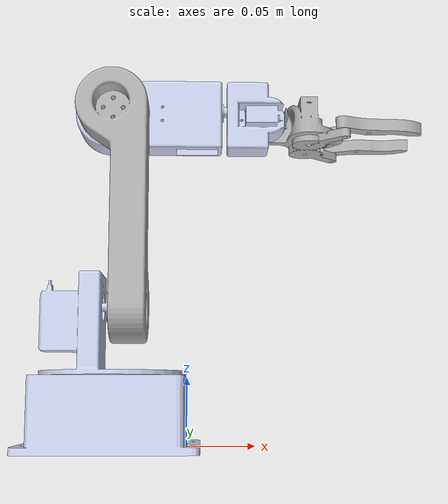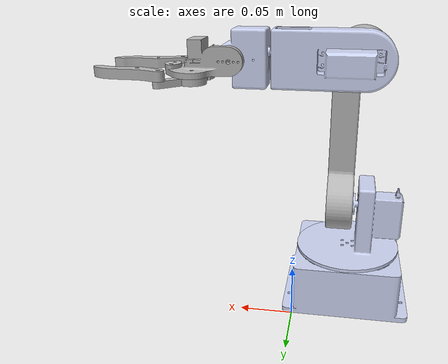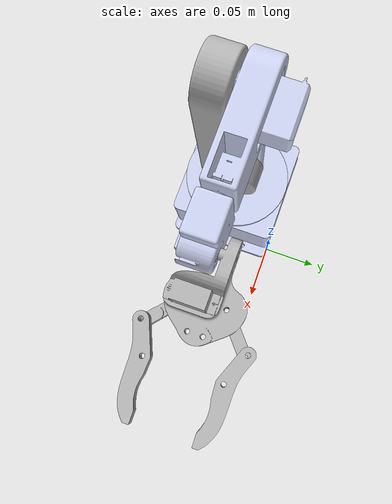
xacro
<?xml version="1.0"?>
<robot xmlns:xacro="http://www.ros.org/wiki/xacro" name="arm_assembly">
    <xacro:arg name="initial_positions_file" default="initial_positions.yaml" />

    <!-- Import arm_assembly urdf file -->
    <xacro:include filename="$(find robotics_project)/urdf/arm_assembly.urdf" />

    <!-- Import control_xacro -->
    <xacro:include filename="arm_assembly.ros2_control.xacro" />

    <xacro:arm_assembly_ros2_control name="FakeSystem" initial_positions_file="$(arg initial_positions_file)"/>

</robot>

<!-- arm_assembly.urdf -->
<robot name="arm_assembly">
  <link name="world" />
  <joint name="base_world_joint" type="fixed">
    <parent link="world" />
    <child link="base_link" />
    <origin xyz="0 0 0" rpy="0 0 0" />
  </joint>
  <link
    name="base_link">
    <inertial>
      <origin
        xyz="-0.049324 -0.050004 0.023619"
        rpy="0 0 0" />
      <mass
        value="0.24179" />
      <inertia
        ixx="0.00031616"
        ixy="-3.231E-08"
        ixz="-1.4721E-06"
        iyy="0.00034841"
        iyz="-8.2186E-09"
        izz="0.00056511" />
    </inertial>
    <visual>
      <origin
        xyz="0 0 0"
        rpy="0 0 0" />
      <geometry>
        <mesh
          filename="package://robotics_project/meshes/base_link.STL" />
      </geometry>
      <material
        name="">
        <color
          rgba="0.79216 0.81961 0.93333 1" />
      </material>
    </visual>
    <collision>
      <origin
        xyz="0 0 0"
        rpy="0 0 0" />
      <geometry>
        <mesh
          filename="package://robotics_project/meshes/base_link.STL" />
      </geometry>
    </collision>
  </link>
  <link
    name="shoulder_link">
    <inertial>
      <origin
        xyz="-0.01642 0.026663 4.5383E-10"
        rpy="0 0 0" />
      <mass
        value="0.083149" />
      <inertia
        ixx="5.1618E-05"
        ixy="5.7239E-06"
        ixz="1.2037E-12"
        iyy="4.3009E-05"
        iyz="-7.4942E-13"
        izz="5.3421E-05" />
    </inertial>
    <visual>
      <origin
        xyz="0 0 0"
        rpy="0 0 0" />
      <geometry>
        <mesh
          filename="package://robotics_project/meshes/shoulder_link.STL" />
      </geometry>
      <material
        name="">
        <color
          rgba="0.79216 0.81961 0.93333 1" />
      </material>
    </visual>
    <collision>
      <origin
        xyz="0 0 0"
        rpy="0 0 0" />
      <geometry>
        <mesh
          filename="package://robotics_project/meshes/shoulder_link.STL" />
      </geometry>
    </collision>
  </link>
  <joint
    name="shoulder_joint"
    type="revolute">
    <origin
      xyz="-0.04975 -0.05 0.0506"
      rpy="1.5708 0 0" />
    <parent
      link="base_link" />
    <child
      link="shoulder_link" />
    <axis
      xyz="0 1 0" />
    <limit
      lower="0"
      upper="3.14"
      effort="100.0"
      velocity="3.0" />
  </joint>
  <link
    name="arm_1_link">
    <inertial>
      <origin
        xyz="-0.067 -0.0088325 0.0064325"
        rpy="0 0 0" />
      <mass
        value="0.18263" />
      <inertia
        ixx="4.3498E-05"
        ixy="-4.0889E-05"
        ixz="-4.0889E-05"
        iyy="0.00061508"
        iyz="-1.355E-06"
        izz="0.00061508" />
    </inertial>
    <visual>
      <origin
        xyz="0 0 0"
        rpy="0 0 0" />
      <geometry>
        <mesh
          filename="package://robotics_project/meshes/arm_1_link.STL" />
      </geometry>
      <material
        name="">
        <color
          rgba="0.69804 0.69804 0.69804 1" />
      </material>
    </visual>
    <collision>
      <origin
        xyz="0 0 0"
        rpy="0 0 0" />
      <geometry>
        <mesh
          filename="package://robotics_project/meshes/arm_1_link.STL" />
      </geometry>
    </collision>
  </link>
  <joint
    name="arm_1_joint"
    type="revolute">
    <origin
      xyz="0 0.05 0"
      rpy="-1.5708 0 -1.5708" />
    <parent
      link="shoulder_link" />
    <child
      link="arm_1_link" />
    <axis
      xyz="0 0 1" />
    <limit
      lower="-1.57"
      upper="1.57"
      effort="100.0"
      velocity="3.0" />
  </joint>
  <link
    name="arrm_2_link">
    <inertial>
      <origin
        xyz="0.021418 1.4132E-05 -0.018236"
        rpy="0 0 0" />
      <mass
        value="0.11424" />
      <inertia
        ixx="2.8434E-05"
        ixy="9.5439E-08"
        ixz="6.9021E-07"
        iyy="7.4983E-05"
        iyz="-1.5866E-09"
        izz="8.5335E-05" />
    </inertial>
    <visual>
      <origin
        xyz="0 0 0"
        rpy="0 0 0" />
      <geometry>
        <mesh
          filename="package://robotics_project/meshes/arrm_2_link.STL" />
      </geometry>
      <material
        name="">
        <color
          rgba="0.79216 0.81961 0.93333 1" />
      </material>
    </visual>
    <collision>
      <origin
        xyz="0 0 0"
        rpy="0 0 0" />
      <geometry>
        <mesh
          filename="package://robotics_project/meshes/arrm_2_link.STL" />
      </geometry>
    </collision>
  </link>
  <joint
    name="arm_2_joint"
    type="revolute">
    <origin
      xyz="-0.137 0 -0.0024"
      rpy="1.5708 -1.5708 0" />
    <parent
      link="arm_1_link" />
    <child
      link="arrm_2_link" />
    <axis
      xyz="0 0 1" />
    <limit
      lower="-0.873"
      upper="2.269"
      effort="100.0"
      velocity="3.0" />
  </joint>
  <link
    name="wrist_1_link">
    <inertial>
      <origin
        xyz="0.020714 -0.0054239 -0.00017492"
        rpy="0 0 0" />
      <mass
        value="0.038269" />
      <inertia
        ixx="9.4187E-06"
        ixy="4.7853E-09"
        ixz="1.7523E-07"
        iyy="5.7368E-06"
        iyz="-1.5989E-10"
        izz="1.1361E-05" />
    </inertial>
    <visual>
      <origin
        xyz="0 0 0"
        rpy="0 0 0" />
      <geometry>
        <mesh
          filename="package://robotics_project/meshes/wrist_1_link.STL" />
      </geometry>
      <material
        name="">
        <color
          rgba="0.79216 0.81961 0.93333 1" />
      </material>
    </visual>
    <collision>
      <origin
        xyz="0 0 0"
        rpy="0 0 0" />
      <geometry>
        <mesh
          filename="package://robotics_project/meshes/wrist_1_link.STL" />
      </geometry>
    </collision>
  </link>
  <joint
    name="wrist_1_joint"
    type="revolute">
    <origin
      xyz="0.0776 0.00525 -0.0151"
      rpy="0 0 0" />
    <parent
      link="arrm_2_link" />
    <child
      link="wrist_1_link" />
    <axis
      xyz="1 0 0" />
    <limit
      lower="0"
      upper="3.14"
      effort="100.0"
      velocity="3.0" />
  </joint>
  <link
    name="wrist_2_link">
    <inertial>
      <origin
        xyz="-0.0054965 0.0031022 -0.028056"
        rpy="0 0 0" />
      <mass
        value="0.028662" />
      <inertia
        ixx="5.1487E-06"
        ixy="6.829E-07"
        ixz="-1.4139E-06"
        iyy="8.2956E-06"
        iyz="9.021E-07"
        izz="5.7017E-06" />
    </inertial>
    <visual>
      <origin
        xyz="0 0 0"
        rpy="0 0 0" />
      <geometry>
        <mesh
          filename="package://robotics_project/meshes/wrist_2_link.STL" />
      </geometry>
      <material
        name="">
        <color
          rgba="0.69804 0.69804 0.69804 1" />
      </material>
    </visual>
    <collision>
      <origin
        xyz="0 0 0"
        rpy="0 0 0" />
      <geometry>
        <mesh
          filename="package://robotics_project/meshes/wrist_2_link.STL" />
      </geometry>
    </collision>
  </link>
  <joint
    name="wrist_2_joint"
    type="revolute">
    <origin
      xyz="0.033 -0.00544 0"
      rpy="-0.050977 0.94745 3.1273" />
    <parent
      link="wrist_1_link" />
    <child
      link="wrist_2_link" />
    <axis
      xyz="0.81193 0.029745 -0.583" />
    <limit
      lower="-0.785"
      upper="0.785"
      effort="100.0"
      velocity="3.0" />
  </joint>
  <link
    name="geared_r_link">
    <inertial>
      <origin
        xyz="-0.0069954 0.0072095 0.0014279"
        rpy="0 0 0" />
      <mass
        value="0.0038122" />
      <inertia
        ixx="1.5043E-07"
        ixy="-2.4068E-08"
        ixz="1.1802E-07"
        iyy="6.8511E-07"
        iyz="1.0386E-08"
        izz="5.5129E-07" />
    </inertial>
    <visual>
      <origin
        xyz="0 0 0"
        rpy="0 0 0" />
      <geometry>
        <mesh
          filename="package://robotics_project/meshes/geared_r_link.STL" />
      </geometry>
      <material
        name="">
        <color
          rgba="0.69804 0.69804 0.69804 1" />
      </material>
    </visual>
    <collision>
      <origin
        xyz="0 0 0"
        rpy="0 0 0" />
      <geometry>
        <mesh
          filename="package://robotics_project/meshes/geared_r_link.STL" />
      </geometry>
    </collision>
  </link>
  <joint
    name="geared_r_joint"
    type="revolute">
    <origin
      xyz="-0.017172 0.0094779 -0.024547"
      rpy="0.0091611 -0.47376 -0.02123" />
    <parent
      link="wrist_2_link" />
    <child
      link="geared_r_link" />
    <axis
      xyz="0.0083501 -0.99919 -0.039351" />
    <limit
      lower="-0.5"
      upper="0.7"
      effort="100.0"
      velocity="3.0" />
  </joint>
  <link
    name="finger_r_link">
    <inertial>
      <origin
        xyz="0.00425 0.0045132 -0.03189"
        rpy="0 0 0" />
      <mass
        value="0.0067468" />
      <inertia
        ixx="2.1424E-06"
        ixy="1.5545E-11"
        ixz="8.1167E-12"
        iyy="1.9948E-06"
        iyz="4.6677E-07"
        izz="2.2885E-07" />
    </inertial>
    <visual>
      <origin
        xyz="0 0 0"
        rpy="0 0 0" />
      <geometry>
        <mesh
          filename="package://robotics_project/meshes/finger_r_link.STL" />
      </geometry>
      <material
        name="">
        <color
          rgba="0.69804 0.69804 0.69804 1" />
      </material>
    </visual>
    <collision>
      <origin
        xyz="0 0 0"
        rpy="0 0 0" />
      <geometry>
        <mesh
          filename="package://robotics_project/meshes/finger_r_link.STL" />
      </geometry>
    </collision>
  </link>
  <joint
    name="finger_r_joint"
    type="revolute">
    <origin
      xyz="-0.028821 -0.0051594 0.0076671"
      rpy="0.68876 -0.039361 1.5792" />
    <parent
      link="geared_r_link" />
    <child
      link="finger_r_link" />
    <axis
      xyz="1 0 0" />
    <limit
      lower="-0.41"
      upper="0.574"
      effort="100.0"
      velocity="3.0" />
  </joint>
  <link
    name="geared_l_link">
    <inertial>
      <origin
        xyz="0.0055788 0.003 -0.00060197"
        rpy="0 0 0" />
      <mass
        value="0.004953" />
      <inertia
        ixx="1.7709E-07"
        ixy="-2.8671E-18"
        ixz="-1.7358E-08"
        iyy="8.3857E-07"
        iyz="-5.6631E-19"
        izz="6.912E-07" />
    </inertial>
    <visual>
      <origin
        xyz="0 0 0"
        rpy="0 0 0" />
      <geometry>
        <mesh
          filename="package://robotics_project/meshes/geared_l_link.STL" />
      </geometry>
      <material
        name="">
        <color
          rgba="0.69804 0.69804 0.69804 1" />
      </material>
    </visual>
    <collision>
      <origin
        xyz="0 0 0"
        rpy="0 0 0" />
      <geometry>
        <mesh
          filename="package://robotics_project/meshes/geared_l_link.STL" />
      </geometry>
    </collision>
  </link>
  <joint
    name="geared_l_joint"
    type="revolute">
    <origin
      xyz="0.0046395 0.013762 -0.040092"
      rpy="0.42357 1.4749 0.43021" />
    <parent
      link="wrist_2_link" />
    <child
      link="geared_l_link" />
    <axis
      xyz="0 1 0" />
    <limit
      lower="-0.5"
      upper="0.7"
      effort="100.0"
      velocity="3.0" />
  </joint>
  <link
    name="finger_l_link">
    <inertial>
      <origin
        xyz="0.00425 0.0045132 -0.03189"
        rpy="0 0 0" />
      <mass
        value="0.0067468" />
      <inertia
        ixx="2.1424E-06"
        ixy="1.5545E-11"
        ixz="8.1185E-12"
        iyy="1.9948E-06"
        iyz="4.6677E-07"
        izz="2.2885E-07" />
    </inertial>
    <visual>
      <origin
        xyz="0 0 0"
        rpy="0 0 0" />
      <geometry>
        <mesh
          filename="package://robotics_project/meshes/finger_l_link.STL" />
      </geometry>
      <material
        name="">
        <color
          rgba="0.69804 0.69804 0.69804 1" />
      </material>
    </visual>
    <collision>
      <origin
        xyz="0 0 0"
        rpy="0 0 0" />
      <geometry>
        <mesh
          filename="package://robotics_project/meshes/finger_l_link.STL" />
      </geometry>
    </collision>
  </link>
  <joint
    name="finger_l_joint"
    type="revolute">
    <origin
      xyz="0.03 0 0.0021147"
      rpy="0.48168 0 -1.5708" />
    <parent
      link="geared_l_link" />
    <child
      link="finger_l_link" />
    <axis
      xyz="1 0 0" />
    <limit
      lower="-0.41"
      upper="0.574"
      effort="100.0"
      velocity="3.0" />
  </joint>

  <ros2_control name="arm_assembly" type="system">
    <hardware>
      <plugin>gz_ros2_control/GazeboSimSystem</plugin>
    </hardware>
    <joint name="shoulder_joint">
      <command_interface name="position">
        <param name="min">0</param>
        <param name="max">3.14</param>
      </command_interface>
      <state_interface name="position">
        <param name="initial_value">0.0</param>
      </state_interface>
      <state_interface name="velocity">
        <param name="initial_value">0.0</param>
      </state_interface>
    </joint>

    <joint name="arm_1_joint">
      <command_interface name="position">
        <param name="min">-1.57</param>
        <param name="max">1.57</param>
      </command_interface>
      <state_interface name="position">
        <param name="initial_value">0.0</param>
      </state_interface>
      <state_interface name="velocity">
        <param name="initial_value">0.0</param>
      </state_interface>
    </joint>

    <joint name="arm_2_joint">
      <command_interface name="position">
        <param name="min">-0.873</param>
        <param name="max">2.269</param>
      </command_interface>
      <state_interface name="position">
        <param name="initial_value">0.0</param>
      </state_interface>
      <state_interface name="velocity">
        <param name="initial_value">0.0</param>
      </state_interface>
    </joint>

    <joint name="wrist_1_joint">
      <command_interface name="position">
        <param name="min">0</param>
        <param name="max">3.14</param>
      </command_interface>
      <state_interface name="position">
        <param name="initial_value">0.0</param>
      </state_interface>
      <state_interface name="velocity">
        <param name="initial_value">0.0</param>
      </state_interface>
    </joint>

    <joint name="wrist_2_joint">
      <command_interface name="position">
        <param name="min">-0.785</param>
        <param name="max">0.785</param>
      </command_interface>
      <state_interface name="position">
        <param name="initial_value">0.0</param>
      </state_interface>
      <state_interface name="velocity">
        <param name="initial_value">0.0</param>
      </state_interface>
    </joint>

    <joint name="geared_r_joint">
      <command_interface name="position">
        <param name="min">-0.5</param>
        <param name="max">0.7</param>
      </command_interface>
      <state_interface name="position">
        <param name="initial_value">0.0</param>
      </state_interface>
      <state_interface name="velocity">
        <param name="initial_value">0.0</param>
      </state_interface>
    </joint>

    <joint name="geared_l_joint">
      <command_interface name="position">
        <param name="min">-0.5</param>
        <param name="max">0.7</param>
      </command_interface>
      <state_interface name="position">
        <param name="initial_value">0.0</param>
      </state_interface>
      <state_interface name="velocity">
        <param name="initial_value">0.0</param>
      </state_interface>
    </joint>

    <joint name="finger_r_joint">
      <command_interface name="position">
        <param name="min">-0.41</param>
        <param name="max">0.574</param>
      </command_interface>
      <state_interface name="position">
        <param name="initial_value">0.0</param>
      </state_interface>
      <state_interface name="velocity">
        <param name="initial_value">0.0</param>
      </state_interface>
    </joint>

    <joint name="finger_l_joint">
      <command_interface name="position">
        <param name="min">-0.41</param>
        <param name="max">0.574</param>
      </command_interface>
      <state_interface name="position">
        <param name="initial_value">0.0</param>
      </state_interface>
      <state_interface name="velocity">
        <param name="initial_value">0.0</param>
      </state_interface>
    </joint>
  </ros2_control>

  <gazebo>
    <plugin filename="gz_ros2_control-system"
      name="gz_ros2_control::GazeboSimROS2ControlPlugin">
      <parameters>
        /home/nour/robotics_ws/install/robotics_project/share/robotics_project/config/joint_controller.yaml </parameters>
    </plugin>
  </gazebo>

</robot>
